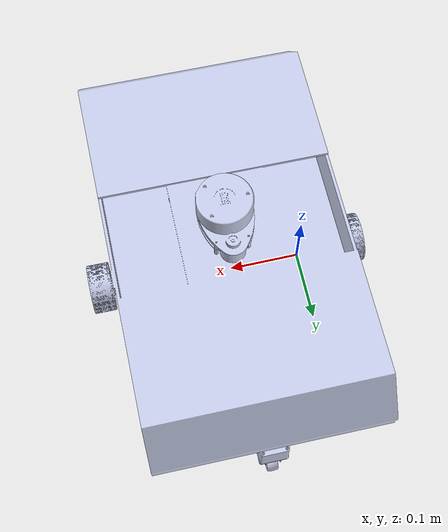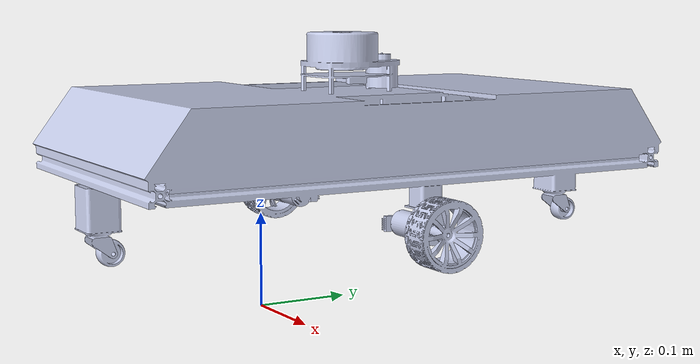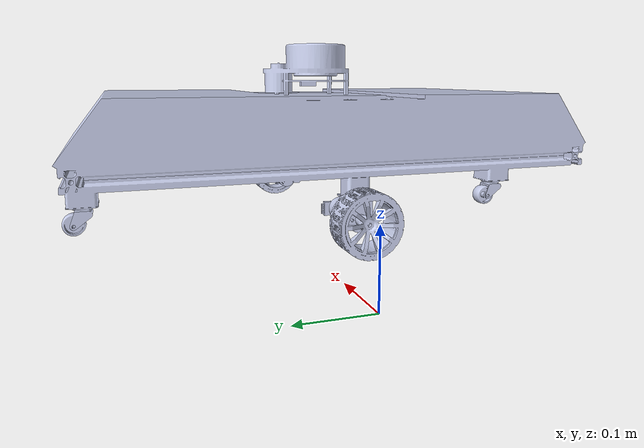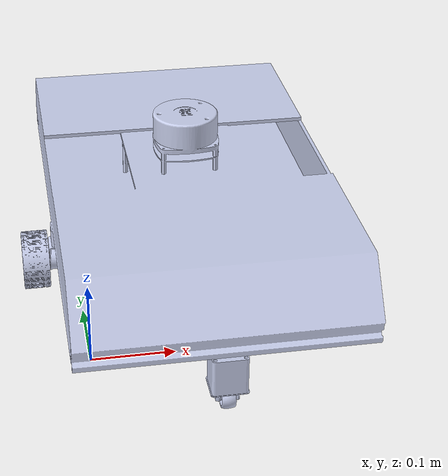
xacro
<?xml version="1.0"?>
<robot xmlns:xacro="http://www.ros.org/wiki/xacro" name="mobot_v2">

    <xacro:include filename="$(find mobot_v2)/xacro/mobot_v2.gazebo.xml"/>

    <link name="world"/>

    <!-- base_link -->
    <link name="Base_origin">
        <inertial>
            <origin xyz="-0.11624 0.040271 -0.022163" rpy="0 0 0" />
            <mass value="1.9026" />
            <inertia ixx="0.021008" ixy="-1.8379E-11" ixz="1.4612E-09"
                     iyy="0.0090992" iyz="-2.7708E-08" izz="0.029691"/>
        </inertial>
        <visual>
            <origin xyz="0 0 0" rpy="0 0 0" />
            <geometry>
                <mesh filename="package://mobot_v2/meshes/Base_origin.STL" />
            </geometry>
            <material name="">
                <color rgba="0.792156862745098 0.819607843137255 0.933333333333333 1" />
            </material>
        </visual>
        <collision>
            <origin xyz="0 0 0" rpy="0 0 0" />
            <geometry>
                <mesh filename="package://mobot_v2/meshes/Base_origin.STL" />
            </geometry>
        </collision>
    </link>

   <!-- Fixed joint connecting the world to the base link -->
  <joint name="Base_origin_joint" type="fixed">
    <parent link="world"/>
    <child link="Base_origin"/>
    <origin rpy="0 3.14159 0" xyz="0.0 0.0 0.17"/>
  </joint>

    <!-- Include wheel and joint macros -->
    <xacro:include filename="$(find mobot_v2)/xacro/Lwheel.xacro"/>
    <xacro:include filename="$(find mobot_v2)/xacro/Rwheel.xacro"/>
    <xacro:include filename="$(find mobot_v2)/xacro/Fwheel.xacro"/>
    <xacro:include filename="$(find mobot_v2)/xacro/Bwheel.xacro"/>

    <!-- Create Left and Right Wheels -->
    <xacro:Lwheel name="left" inertial_xyz="0.000824894843359 -0.000216415253456226 0.00581998639719201" joint_xyz="0.0605111083780135 0.0402696535569387 0.0519311440375263" />
    <xacro:Rwheel name="right" inertial_xyz="-4.57546365438405E-05 -0.000851582983449159 -0.00581998639717496" joint_xyz="-0.292991104478199 0.0402696535569407 0.0519311440375265" />

    <!-- Create Front and Back Wheels -->
    <xacro:Fwheel name="front" inertial_xyz="0 0 1.38777878078145E-17" joint_xyz="-0.118337283667785 0.310226503808691 0.0727311440375248" />
    <xacro:Bwheel name="back" inertial_xyz="0 0 1.38777878078145E-17"
    joint_xyz="-0.118337283667785 -0.209773496191309 0.072731144037525" />

    <!-- Include Lidar and joint macros -->
    <xacro:include filename="$(find mobot_v2)/xacro/lidar.xacro"/>

    <!-- Create Lidar Sensors -->
    <xacro:Lidar name="frontlidar" inertial_xyz="0.00676628412110622 -0.0073497547966201 9.204265617406E-05" joint_xyz="-0.116239998050096 0.0332696535569434 -0.107718855962475" />

</robot>

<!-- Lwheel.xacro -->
<robot xmlns:xacro="http://www.ros.org/wiki/xacro" name="Lwheel">

    <xacro:macro name="Lwheel" params="name inertial_xyz joint_xyz">
    <link name="Lwheel">
        <inertial>
            <origin xyz="0.000824894843359 -0.000216415253456226 0.00581998639719201" rpy="0 0 0"/>
            <mass value="0.0419551495558746"/>
            <inertia ixx="1.84062435462854E-05" ixy="-8.35614213397228E-09" ixz="-4.19043899727292E-10"
                     iyy="1.83755048516302E-05" iyz="9.84368696584489E-11" izz="3.09193291489182E-05"/>
        </inertial>
        <visual>
            <origin xyz="0 0 0" rpy="0 0 0"/>
            <geometry>
                <mesh filename="package://mobot_v2/meshes/Lwheel.STL"/>
            </geometry>
             <material name="">
        <color rgba="0.792156862745098 0.819607843137255 0.933333333333333 1" />
      	     </material>
        </visual>
        <collision>
            <origin xyz="0 0 0" rpy="0 0 0"/>
            <geometry>
                <mesh filename="package://mobot_v2/meshes/Lwheel.STL"/>
            </geometry>
        </collision>
    </link>

    <joint name="Lwheel-jt" type="continuous">
        <origin xyz="0.0605111083780135 0.0402696535569387 0.0519311440375263" rpy="-1.5707963267949 0 1.5707963267949"/>
        <parent link="Base_origin"/>
        <child link="Lwheel"/>
        <axis xyz="0 0 -1"/>
    </joint>
</xacro:macro>

</robot>

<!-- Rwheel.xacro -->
<robot xmlns:xacro="http://www.ros.org/wiki/xacro" name="Rwheel">

    <xacro:macro name="Rwheel" params="name inertial_xyz joint_xyz">
    <link name="Rwheel">
        <inertial>
            <origin xyz="-4.57546365438405E-05 -0.000851582983449159 -0.00581998639717496" rpy="0 0 0"/>
            <mass value="0.0419551495559179"/>
            <inertia ixx="1.83735112724644E-05" ixy="2.13792698510769E-09" ixz="-3.41954935963936E-11"
                     iyy="1.84082371254683E-05" iyz="-4.29090065698067E-10" izz="3.09193291489226E-05"/>
        </inertial>
        <visual>
            <origin xyz="0 0 0" rpy="0 0 0"/>
            <geometry>
                <mesh filename="package://mobot_v2/meshes/Rwheel.STL"/>
            </geometry>
            <material name="">
        <color
          rgba="0.792156862745098 0.819607843137255 0.933333333333333 1" />
            </material>
        </visual>
        <collision>
            <origin xyz="0 0 0" rpy="0 0 0"/>
            <geometry>
                <mesh filename="package://mobot_v2/meshes/Rwheel.STL"/>
            </geometry>
        </collision>
    </link>

    <joint name="Rwheel-jt" type="continuous">
        <origin xyz="-0.292991104478199 0.0402696535569407 0.0519311440375263" rpy="-1.5707963267949 0 1.5707963267949"/>
        <parent link="Base_origin"/>
        <child link="Rwheel"/>
        <axis xyz="0 0 -1"/>
    </joint>
</xacro:macro>

</robot>

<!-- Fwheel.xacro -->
<robot xmlns:xacro="http://www.ros.org/wiki/xacro" name="Fwheel">

  <xacro:macro name="Fwheel" params="name inertial_xyz joint_xyz">
    <link name="Fwheel">
    <inertial>
      <origin
        xyz="0 0 1.38777878078145E-17"
        rpy="0 0 0" />
      <mass
        value="0.00352622390112194" />
      <inertia
        ixx="2.11465239614814E-07"
        ixy="2.06217042208846E-23"
        ixz="-1.04288087401274E-22"
        iyy="2.11465239614814E-07"
        iyz="-2.5614406397533E-24"
        izz="3.32871831958792E-07" />
    </inertial>
    <visual>
      <origin
        xyz="0 0 0"
        rpy="0 0 0" />
      <geometry>
        <mesh
          filename="package://mobot_v2/meshes/Fwheel.STL" />
      </geometry>
      <material
        name="">
        <color
          rgba="0.792156862745098 0.819607843137255 0.933333333333333 1" />
      </material>
    </visual>
    <collision>
      <origin
        xyz="0 0 0"
        rpy="0 0 0" />
      <geometry>
        <mesh
          filename="package://mobot_v2/meshes/Fwheel.STL" />
      </geometry>
    </collision>
  </link>

    <joint name="Fwheel-jt" type="fixed">
    <origin
      xyz="-0.118337283667785 0.310226503808691 0.0727311440375248"
      rpy="-1.5707963267949 0 1.5707963267949" />
    <parent
      link="Base_origin" />
    <child
      link="Fwheel" />
    <axis
      xyz="0 0 0" />
  </joint>
</xacro:macro>

</robot>

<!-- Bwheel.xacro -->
<robot xmlns:xacro="http://www.ros.org/wiki/xacro" name="Bwheel">

  <xacro:macro name="Bwheel" params="name inertial_xyz joint_xyz">
  <link name="Bwheel">
    <inertial>
      <origin xyz="0 0 1.38777878078145E-17" rpy="0 0 0" />
      <mass value="0.00352622390112194" />
      <inertia ixx="2.11465239614814E-07" ixy="-2.79466685801447E-23" ixz="7.60585199653189E-23" iyy="2.11465239614814E-07"
               iyz="4.45968973134151E-23" izz="3.32871831958793E-07" />
    </inertial>

    <visual>
      <origin xyz="0 0 0" rpy="0 0 0" />
      <geometry>
        <mesh filename="package://mobot_v2/meshes/Bwheel.STL" />
      </geometry>
      <material name="">
        <color rgba="0.792156862745098 0.819607843137255 0.933333333333333 1" />
      </material>
    </visual>

    <collision>
      <origin xyz="0 0 0" rpy="0 0 0" />
      <geometry>
        <mesh filename="package://mobot_v2/meshes/Bwheel.STL" />
      </geometry>
    </collision>
  </link>

  <joint name="Bwheel-jt" type="fixed">
    <origin xyz="-0.118337283667785 -0.209773496191309 0.072731144037525" rpy="-1.5707963267949 0 1.5707963267949" />
    <parent link="Base_origin" />
    <child link="Bwheel" />
    <axis xyz="0 0 0" />
  </joint>
</xacro:macro>

</robot>

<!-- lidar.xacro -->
<robot xmlns:xacro="http://www.ros.org/wiki/xacro" name="Lidar">

  <xacro:macro name="Lidar" params="name inertial_xyz joint_xyz">
    <link name="lidar">
    <inertial>
      <origin
        xyz="0.00676628412110622 -0.0073497547966201 9.204265617406E-05"
        rpy="0 0 0" />
      <mass
        value="1.32944589754502" />
      <inertia
        ixx="0.000612752010300123"
        ixy="0.000158232462510536"
        ixz="8.01141141656571E-07"
        iyy="0.0010957461492681"
        iyz="3.09663447837291E-06"
        izz="0.000957691135206996" />
    </inertial>
    <visual>
      <origin
        xyz="0 0 0"
        rpy="0 0 0" />
      <geometry>
        <mesh
          filename="package://mobot_v2/meshes/lidar.STL" />
      </geometry>
      <material name="">
        <color
          rgba="0.792156862745098 0.819607843137255 0.933333333333333 1" />
      </material>
    </visual>
    <collision>
      <origin
        xyz="0 0 0"
        rpy="0 0 0" />
      <geometry>
        <mesh
          filename="package://mobot_v2/meshes/lidar.STL" />
      </geometry>
    </collision>
  </link>

  <joint
    name="lidar-jt"
    type="continuous">
    <origin
      xyz="-0.116239998050096 0.0332696535569434 -0.107718855962475"
      rpy="-1.5707963267949 0 1.5707963267949" />
    <parent
      link="Base_origin" />
    <child
      link="lidar" />
    <axis
      xyz="0 1 0" />
    <limit
      lower="0"
      upper="0"
      effort="0"
      velocity="0" />
  </joint>
</xacro:macro>

</robot>
